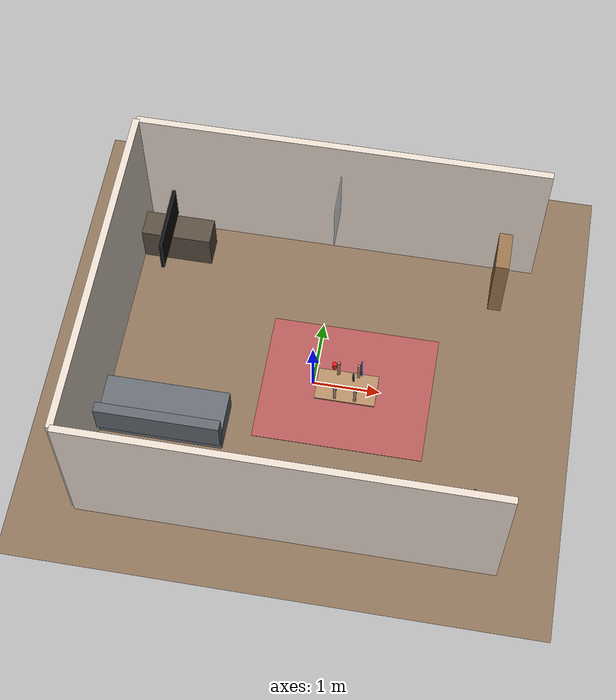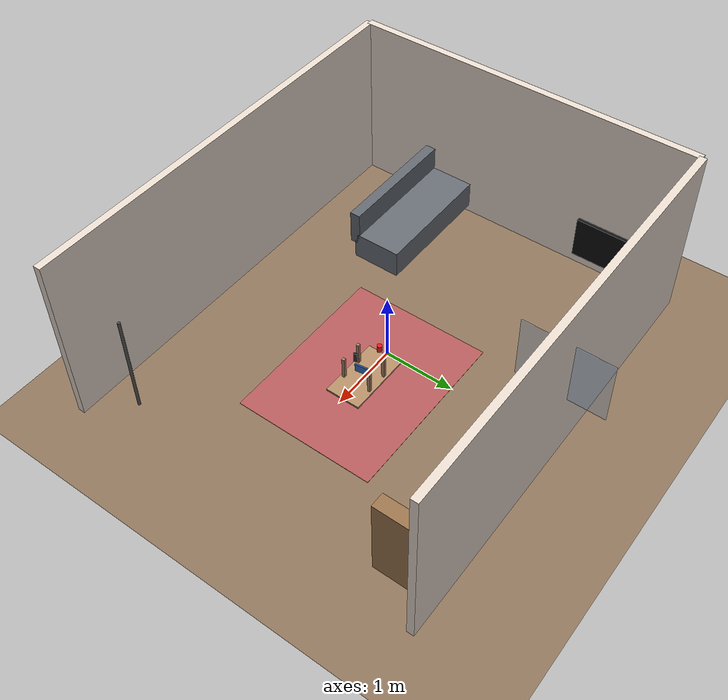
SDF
<sdf version="1.9">
 <world name="living_room">
  <physics name="default_physics" default="true" type="ode">
   <max_step_size>0.001</max_step_size>
   <real_time_factor>1.0</real_time_factor>
   <real_time_update_rate>1000</real_time_update_rate>
   <gravity>0 0 -9.81</gravity>
   <ode>
    <solver><type>quick</type><iters>50</iters><sor>1.3</sor></solver>
    <constraints>
     <cfm>0.0</cfm>
     <erp>0.2</erp>
     <contact_max_correcting_vel>100.0</contact_max_correcting_vel>
     <contact_surface_layer>0.001</contact_surface_layer>
    </constraints>
   </ode>
  </physics>
  <scene>
   <ambient>0.5 0.45 0.4 1.0</ambient>
   <background>0.6 0.55 0.5 1.0</background>
   <grid>false</grid>
   <shadows>true</shadows>
  </scene>
  <light name="ceiling_main" type="point">
   <pose>0 0 2.8 0 0 0</pose>
   <diffuse>0.95 0.9 0.8 1.0</diffuse>
   <specular>0.1 0.1 0.1 1.0</specular>
   <attenuation>
    <range>8</range>
    <constant>0.4</constant>
    <linear>0.02</linear>
    <quadratic>0.002</quadratic>
   </attenuation>
  </light>
  <light name="window_light" type="directional">
   <pose>0 3 2.5 0 0 0</pose>
   <diffuse>0.4 0.5 0.7 1.0</diffuse>
   <specular>0.2 0.2 0.3 1.0</specular>
   <direction>0 1 -0.5</direction>
   <cast_shadows>false</cast_shadows>
  </light>
  <model name="ground_plane">
   <static>true</static>
   <link name="link">
    <visual name="visual">
     <geometry><plane><normal>0 0 1</normal><size>6 5</size></plane></geometry>
     <material>
      <ambient>0.55 0.45 0.35 1</ambient>
      <diffuse>0.55 0.45 0.35 1</diffuse>
      <specular>0.02 0.02 0.02 1</specular>
     </material>
    </visual>
    <collision name="collision">
     <geometry><plane><normal>0 0 1</normal><size>6 5</size></plane></geometry>
     <surface><friction><ode><mu>1.0</mu><mu2>1.0</mu2></ode></friction></surface>
    </collision>
   </link>
  </model>
  <model name="area_rug">
   <static>true</static>
   <pose>0.5 0 0.001 0 0 0</pose>
   <link name="rug">
    <visual name="rug_visual">
     <geometry><box><size>2.5 2.0 0.005</size></box></geometry>
     <material><ambient>0.7 0.35 0.35 1</ambient><diffuse>0.7 0.35 0.35 1</diffuse></material>
    </visual>
   </link>
  </model>
  <model name="wall_back">
   <static>true</static>
   <pose>-3 0 1.25 0 0 0</pose>
   <link name="link">
    <visual name="visual">
     <geometry><box><size>0.1 5 2.5</size></box></geometry>
     <material>
      <ambient>0.9 0.85 0.8 1</ambient>
      <diffuse>0.9 0.85 0.8 1</diffuse>
      <specular>0.0 0.0 0.0 1</specular>
     </material>
    </visual>
    <collision name="collision"><geometry><box><size>0.1 5 2.5</size></box></geometry></collision>
   </link>
  </model>
  <model name="wall_left">
   <static>true</static>
   <pose>0 2.5 1.25 0 0 1.5708</pose>
   <link name="link">
    <visual name="visual">
     <geometry><box><size>0.1 6 2.5</size></box></geometry>
     <material>
      <ambient>0.9 0.85 0.8 1</ambient>
      <diffuse>0.9 0.85 0.8 1</diffuse>
      <specular>0.0 0.0 0.0 1</specular>
     </material>
    </visual>
    <collision name="collision"><geometry><box><size>0.1 6 2.5</size></box></geometry></collision>
   </link>
  </model>
  <model name="wall_right">
   <static>true</static>
   <pose>0 -2.5 1.25 0 0 1.5708</pose>
   <link name="link">
    <visual name="visual">
     <geometry><box><size>0.1 6 2.5</size></box></geometry>
     <material>
      <ambient>0.9 0.85 0.8 1</ambient>
      <diffuse>0.9 0.85 0.8 1</diffuse>
      <specular>0.0 0.0 0.0 1</specular>
     </material>
    </visual>
    <collision name="collision"><geometry><box><size>0.1 6 2.5</size></box></geometry></collision>
   </link>
  </model>
  <model name="sofa_main">
   <static>true</static>
   <pose>-2.0 -1.0 0.35 0 0 0</pose>
   <link name="seat">
    <inertial>
     <mass>40.0</mass>
     <inertia><ixx>2.0</ixx><ixy>0.0</ixy><ixz>0.0</ixz><iyy>1.0</iyy><iyz>0.0</iyz><izz>2.0</izz></inertia>
    </inertial>
    <visual name="seat_visual">
     <geometry><box><size>1.8 0.7 0.4</size></box></geometry>
     <material>
      <ambient>0.4 0.42 0.45 1</ambient>
      <diffuse>0.4 0.42 0.45 1</diffuse>
      <specular>0.05 0.05 0.05 1</specular>
     </material>
    </visual>
    <collision name="seat_collision"><geometry><box><size>1.8 0.7 0.4</size></box></geometry></collision>
   </link>
  </model>
  <model name="sofa_backrest">
   <static>true</static>
   <pose>-2.0 -1.35 0.65 0 0 0</pose>
   <link name="backrest">
    <inertial>
     <mass>15.0</mass>
     <inertia><ixx>1.0</ixx><ixy>0.0</ixy><ixz>0.0</ixz><iyy>0.3</iyy><iyz>0.0</iyz><izz>1.0</izz></inertia>
    </inertial>
    <visual name="backrest_visual">
     <geometry><box><size>1.8 0.15 0.5</size></box></geometry>
     <material><ambient>0.38 0.4 0.43 1</ambient><diffuse>0.38 0.4 0.43 1</diffuse></material>
    </visual>
    <collision name="backrest_collision"><geometry><box><size>1.8 0.15 0.5</size></box></geometry></collision>
   </link>
  </model>
  <model name="coffee_table">
   <static>true</static>
   <pose>0.5 0 0.01 0 0 0</pose>
   <link name="table_top">
    <inertial>
     <mass>5.0</mass>
     <inertia><ixx>0.5</ixx><ixy>0.0</ixy><ixz>0.0</ixz><iyy>0.3</iyy><iyz>0.0</iyz><izz>0.5</izz></inertia>
    </inertial>
    <visual name="top_visual">
     <geometry><box><size>0.90 0.50 0.04</size></box></geometry>
     <material><ambient>0.7 0.55 0.4 1</ambient><diffuse>0.7 0.55 0.4 1</diffuse></material>
    </visual>
    <collision name="top_collision"><geometry><box><size>0.90 0.50 0.04</size></box></geometry></collision>
   </link>
  </model>
  <model name="ct_leg_1">
   <static>true</static>
   <pose>0.35 0.20 0.18 0 0 0</pose>
   <link name="leg">
    <visual name="leg_visual">
     <geometry><box><size>0.04 0.04 0.36</size></box></geometry>
     <material><ambient>0.65 0.50 0.38 1</ambient><diffuse>0.65 0.50 0.38 1</diffuse></material>
    </visual>
    <collision name="leg_collision"><geometry><box><size>0.04 0.04 0.36</size></box></geometry></collision>
   </link>
  </model>
  <model name="ct_leg_2">
   <static>true</static>
   <pose>0.35 -0.20 0.18 0 0 0</pose>
   <link name="leg">
    <visual name="leg_visual">
     <geometry><box><size>0.04 0.04 0.36</size></box></geometry>
     <material><ambient>0.65 0.50 0.38 1</ambient><diffuse>0.65 0.50 0.38 1</diffuse></material>
    </visual>
    <collision name="leg_collision"><geometry><box><size>0.04 0.04 0.36</size></box></geometry></collision>
   </link>
  </model>
  <model name="ct_leg_3">
   <static>true</static>
   <pose>0.65 -0.20 0.18 0 0 0</pose>
   <link name="leg">
    <visual name="leg_visual">
     <geometry><box><size>0.04 0.04 0.36</size></box></geometry>
     <material><ambient>0.65 0.50 0.38 1</ambient><diffuse>0.65 0.50 0.38 1</diffuse></material>
    </visual>
    <collision name="leg_collision"><geometry><box><size>0.04 0.04 0.36</size></box></geometry></collision>
   </link>
  </model>
  <model name="ct_leg_4">
   <static>true</static>
   <pose>0.65 0.20 0.18 0 0 0</pose>
   <link name="leg">
    <visual name="leg_visual">
     <geometry><box><size>0.04 0.04 0.36</size></box></geometry>
     <material><ambient>0.65 0.50 0.38 1</ambient><diffuse>0.65 0.50 0.38 1</diffuse></material>
    </visual>
    <collision name="leg_collision"><geometry><box><size>0.04 0.04 0.36</size></box></geometry></collision>
   </link>
  </model>
  <model name="red_cup_on_table">
   <static>false</static>
   <pose>0.3 0.1 0.45 0 0 0</pose>
   <link name="cup">
    <inertial>
     <mass>0.05</mass>
     <inertia>
      <ixx>0.00005</ixx>
      <ixy>0.0</ixy>
      <ixz>0.0</ixz>
      <iyy>0.00005</iyy>
      <iyz>0.0</iyz>
      <izz>0.00003</izz>
     </inertia>
    </inertial>
    <visual name="cup_visual">
     <geometry><cylinder><radius>0.035</radius><length>0.10</length></cylinder></geometry>
     <material>
      <ambient>0.9 0.1 0.1 1</ambient>
      <diffuse>0.9 0.1 0.1 1</diffuse>
      <specular>0.3 0.3 0.3 1</specular>
     </material>
    </visual>
    <collision name="cup_collision">
     <geometry><cylinder><radius>0.035</radius><length>0.10</length></cylinder></geometry>
    </collision>
   </link>
  </model>
  <model name="tv_remote">
   <static>false</static>
   <pose>0.6 -0.05 0.45 0 0 0.3</pose>
   <link name="remote">
    <inertial>
     <mass>0.08</mass>
     <inertia>
      <ixx>0.00005</ixx>
      <ixy>0.0</ixy>
      <ixz>0.0</ixz>
      <iyy>0.00002</iyy>
      <iyz>0.0</iyz>
      <izz>0.00005</izz>
     </inertia>
    </inertial>
    <visual name="remote_visual">
     <geometry><box><size>0.02 0.05 0.15</size></box></geometry>
     <material><ambient>0.15 0.15 0.15 1</ambient><diffuse>0.15 0.15 0.15 1</diffuse></material>
    </visual>
    <collision name="remote_collision"><geometry><box><size>0.02 0.05 0.15</size></box></geometry></collision>
   </link>
  </model>
  <model name="book_on_table">
   <static>false</static>
   <pose>0.7 0.12 0.435 0 0 0.15</pose>
   <link name="book">
    <inertial>
     <mass>0.3</mass>
     <inertia>
      <ixx>0.0005</ixx>
      <ixy>0.0</ixy>
      <ixz>0.0</ixz>
      <iyy>0.0003</iyy>
      <iyz>0.0</iyz>
      <izz>0.0005</izz>
     </inertia>
    </inertial>
    <visual name="book_visual">
     <geometry><box><size>0.02 0.18 0.12</size></box></geometry>
     <material><ambient>0.2 0.4 0.7 1</ambient><diffuse>0.2 0.4 0.7 1</diffuse></material>
    </visual>
    <collision name="book_collision"><geometry><box><size>0.02 0.18 0.12</size></box></geometry></collision>
   </link>
  </model>
  <model name="tv_stand">
   <static>true</static>
   <pose>-2.5 2.0 0.3 0 0 0</pose>
   <link name="stand">
    <inertial>
     <mass>20.0</mass>
     <inertia><ixx>0.8</ixx><ixy>0.0</ixy><ixz>0.0</ixz><iyy>0.2</iyy><iyz>0.0</iyz><izz>0.8</izz></inertia>
    </inertial>
    <visual name="stand_visual">
     <geometry><box><size>1.2 0.4 0.6</size></box></geometry>
     <material><ambient>0.35 0.30 0.25 1</ambient><diffuse>0.35 0.30 0.25 1</diffuse></material>
    </visual>
    <collision name="stand_collision"><geometry><box><size>1.2 0.4 0.6</size></box></geometry></collision>
   </link>
  </model>
  <model name="tv_screen">
   <static>true</static>
   <pose>-2.5 1.75 0.9 0 0 0</pose>
   <link name="screen">
    <visual name="screen_visual">
     <geometry><box><size>0.05 1.0 0.6</size></box></geometry>
     <material>
      <ambient>0.05 0.05 0.05 1</ambient>
      <diffuse>0.05 0.05 0.05 1</diffuse>
      <specular>0.5 0.5 0.5 1</specular>
     </material>
    </visual>
    <collision name="screen_collision"><geometry><box><size>0.05 1.0 0.6</size></box></geometry></collision>
   </link>
  </model>
  <model name="bookshelf">
   <static>true</static>
   <pose>2.5 2.0 0.6 0 0 0</pose>
   <link name="shelf">
    <inertial>
     <mass>25.0</mass>
     <inertia><ixx>1.0</ixx><ixy>0.0</ixy><ixz>0.0</ixz><iyy>0.3</iyy><iyz>0.0</iyz><izz>1.0</izz></inertia>
    </inertial>
    <visual name="shelf_visual">
     <geometry><box><size>0.2 0.6 1.2</size></box></geometry>
     <material><ambient>0.6 0.45 0.30 1</ambient><diffuse>0.6 0.45 0.30 1</diffuse></material>
    </visual>
    <collision name="shelf_collision"><geometry><box><size>0.2 0.6 1.2</size></box></geometry></collision>
   </link>
  </model>
  <model name="floor_lamp">
   <static>true</static>
   <pose>2.5 -2.0 0.75 0 0 0</pose>
   <link name="lamp_pole">
    <visual name="pole_visual">
     <geometry><cylinder><radius>0.02</radius><length>1.5</length></cylinder></geometry>
     <material><ambient>0.3 0.3 0.3 1</ambient><diffuse>0.3 0.3 0.3 1</diffuse></material>
    </visual>
    <collision name="pole_collision">
     <geometry><cylinder><radius>0.02</radius><length>1.5</length></cylinder></geometry>
    </collision>
   </link>
  </model>
  <model name="window_marker">
   <static>true</static>
   <pose>0 2.45 1.4 0 0 0</pose>
   <link name="window">
    <visual name="window_visual">
     <geometry><box><size>0.01 1.2 0.9</size></box></geometry>
     <material>
      <ambient>0.7 0.8 0.9 0.5</ambient>
      <diffuse>0.7 0.8 0.9 0.5</diffuse>
      <specular>0.8 0.8 0.9 0.5</specular>
     </material>
    </visual>
   </link>
  </model>
 </world>
</sdf>
